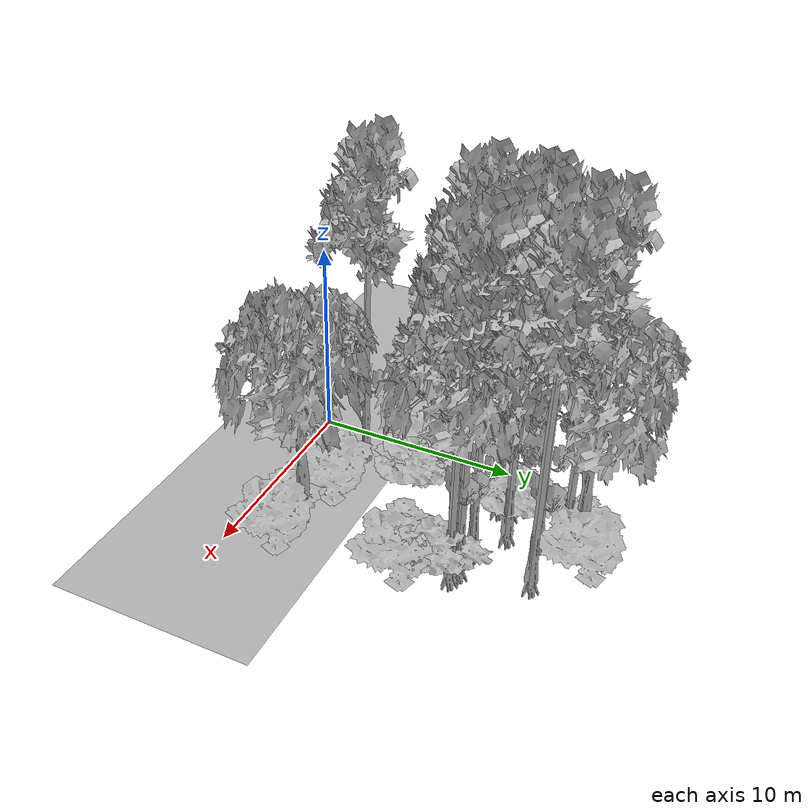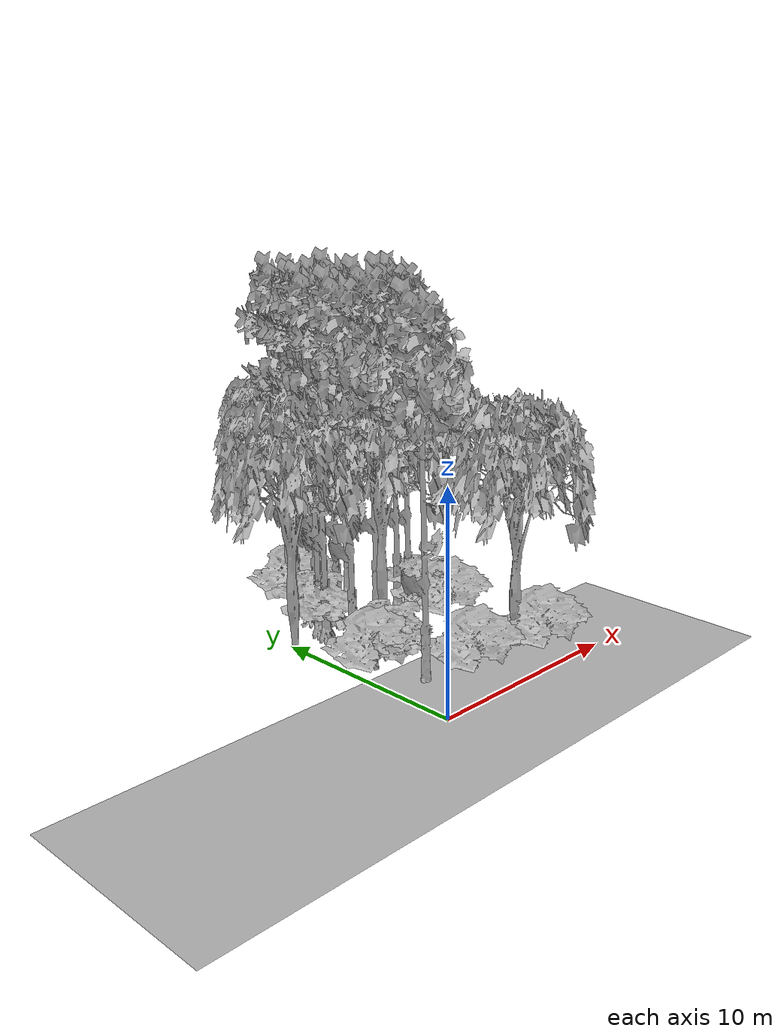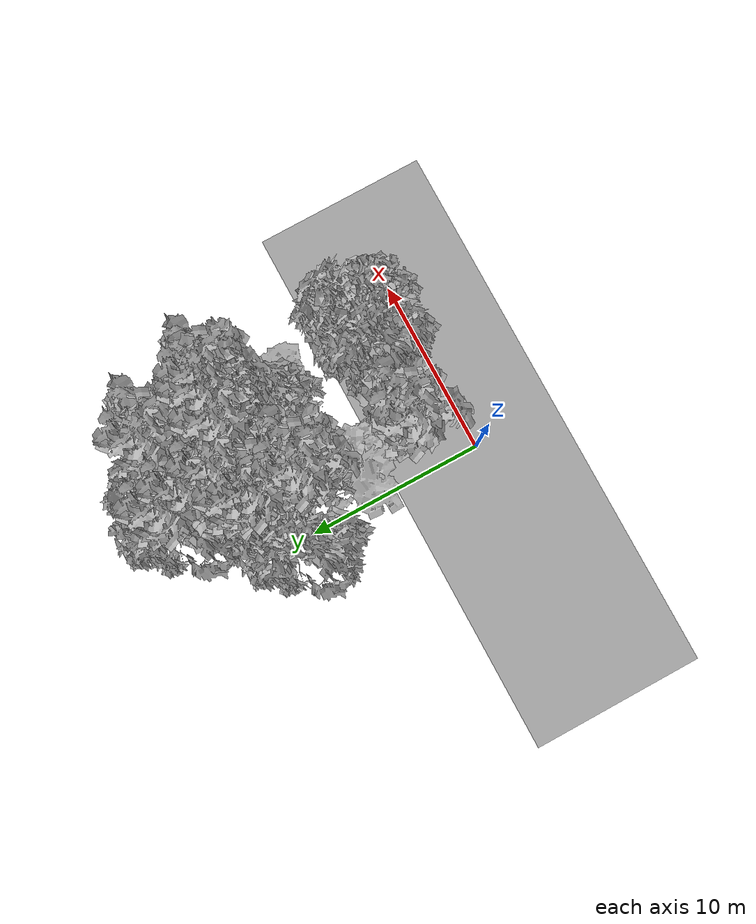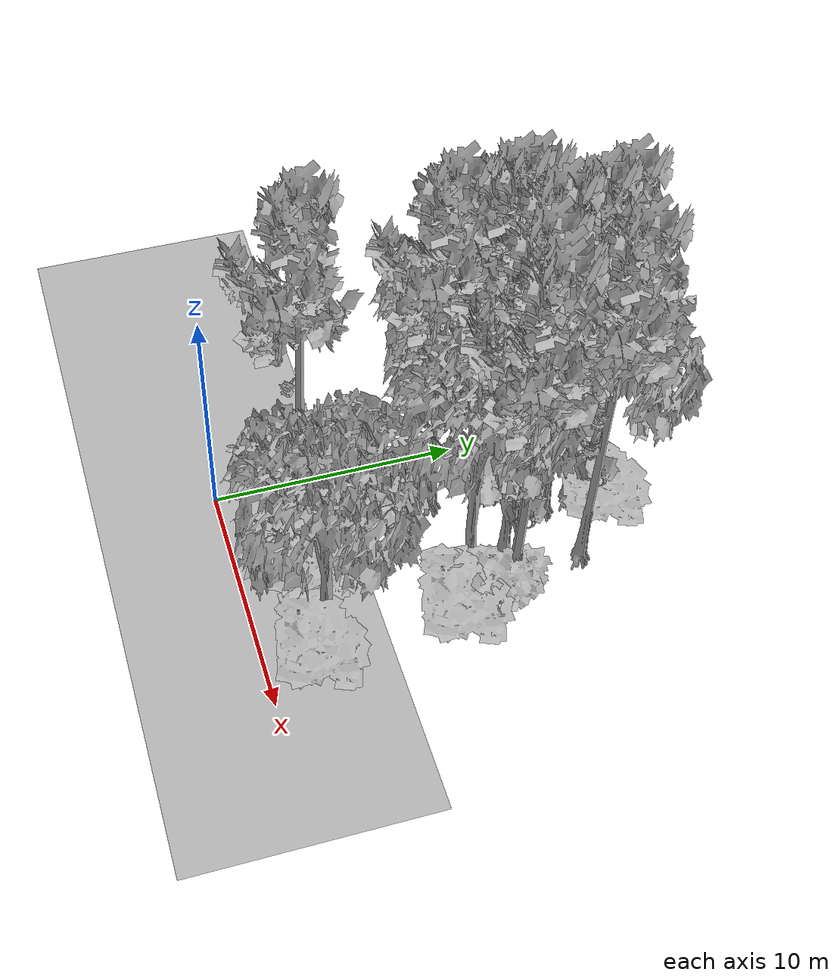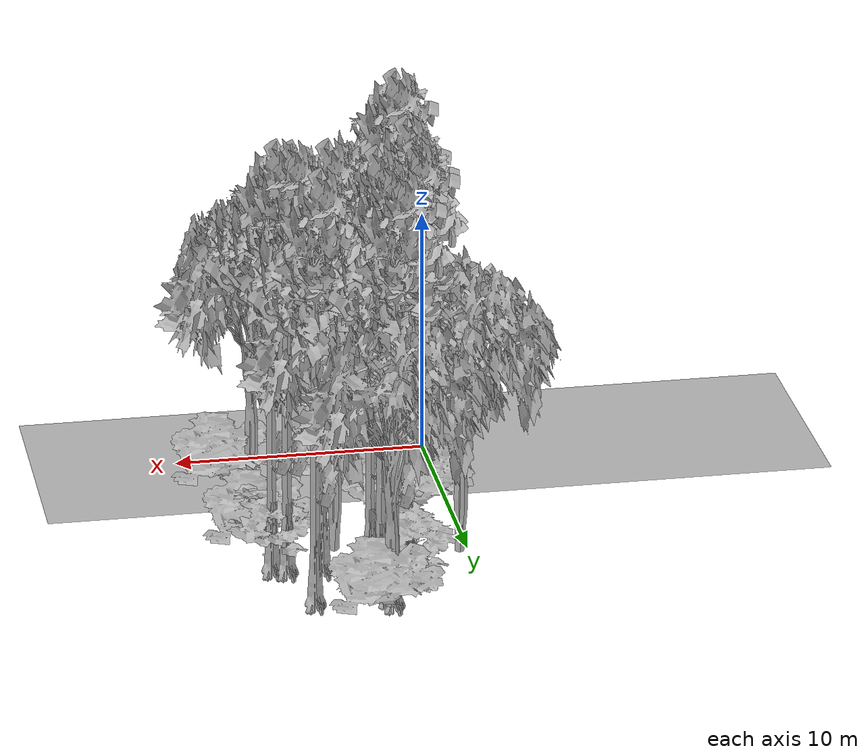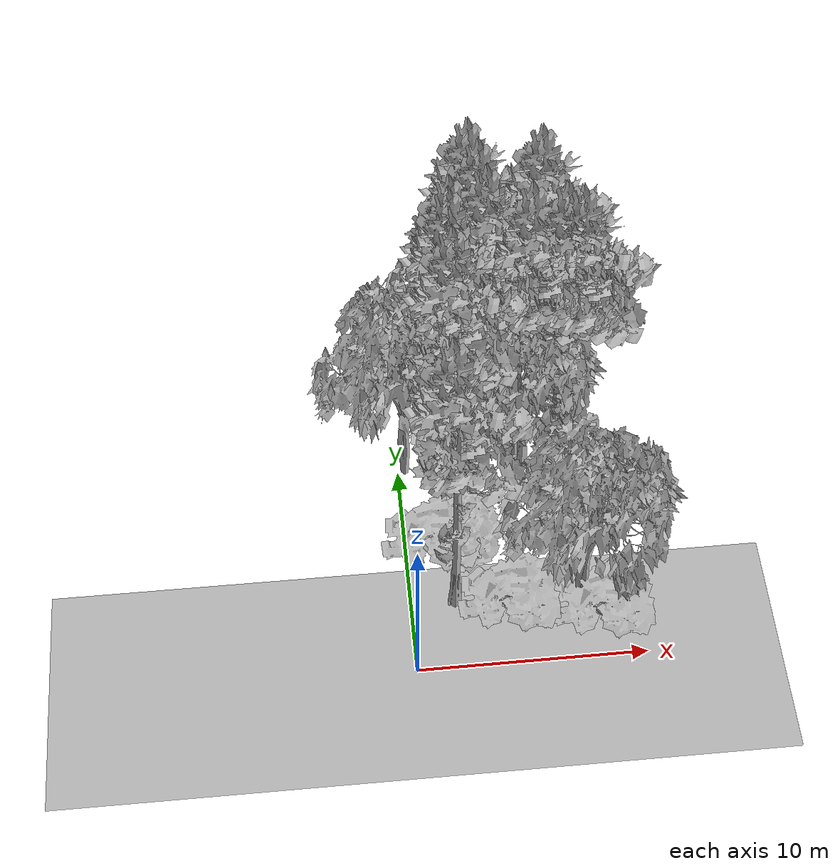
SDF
<sdf version="1.7">
 <world name="default">
  <model name="ground_plane">
   <static>1</static>
   <link name="link">
    <collision name="collision">
     <pose>-50 0 0 0 -0 0</pose>
     <geometry><plane><normal>0 0 1</normal><size>100 100</size></plane></geometry>
     <surface><contact><ode><min_depth>0.01</min_depth><max_vel>0</max_vel></ode></contact></surface>
    </collision>
    <visual name="grass">
     <cast_shadows>0</cast_shadows>
     <geometry>
      <mesh>
       <scale>0.5814285714285714 0.18142857142857144 0.1</scale>
       <uri>file://grass_plane/meshes/grass_plane.dae</uri>
      </mesh>
     </geometry>
    </visual>
   </link>
  </model>
  <model name="Tree 1">
   <static>1</static>
   <pose>6.492176944869151 13.321462057910974 0 1.57079 -0 0</pose>
   <link name="link">
    <collision name="collision">
     <geometry><mesh><scale>3.5 5 3.5</scale><uri>model://tree_9/meshes/tree_9.obj</uri></mesh></geometry>
    </collision>
    <visual name="visual">
     <geometry><mesh><scale>3.5 5 3.5</scale><uri>model://tree_9/meshes/tree_9.obj</uri></mesh></geometry>
    </visual>
   </link>
  </model>
  <model name="Tree 22">
   <static>1</static>
   <pose>5.731041198923485 10.343546982625135 0 1.57079 -0 0</pose>
   <link name="link">
    <collision name="collision">
     <geometry><mesh><scale>3.5 5 3.5</scale><uri>model://tree_9/meshes/tree_9.obj</uri></mesh></geometry>
    </collision>
    <visual name="visual">
     <geometry><mesh><scale>3.5 5 3.5</scale><uri>model://tree_9/meshes/tree_9.obj</uri></mesh></geometry>
    </visual>
   </link>
  </model>
  <model name="Tree 29">
   <static>1</static>
   <pose>1.9231340335664484 3.1677759109837744 0 1.57079 -0 0</pose>
   <link name="link">
    <collision name="collision">
     <geometry><mesh><scale>3.5 5 3.5</scale><uri>model://tree_9/meshes/tree_9.obj</uri></mesh></geometry>
    </collision>
    <visual name="visual">
     <geometry><mesh><scale>3.5 5 3.5</scale><uri>model://tree_9/meshes/tree_9.obj</uri></mesh></geometry>
    </visual>
   </link>
  </model>
  <model name="Tree 49">
   <static>1</static>
   <pose>3.8723183222564757 12.762590587330315 0 1.57079 -0 0</pose>
   <link name="link">
    <collision name="collision">
     <geometry><mesh><scale>3.5 5 3.5</scale><uri>model://tree_9/meshes/tree_9.obj</uri></mesh></geometry>
    </collision>
    <visual name="visual">
     <geometry><mesh><scale>3.5 5 3.5</scale><uri>model://tree_9/meshes/tree_9.obj</uri></mesh></geometry>
    </visual>
   </link>
  </model>
  <model name="Tree 51">
   <static>1</static>
   <pose>5.000393196169945 9.198210089421497 0 1.57079 -0 0</pose>
   <link name="link">
    <collision name="collision">
     <geometry><mesh><scale>3.5 5 3.5</scale><uri>model://tree_2/meshes/tree_2.obj</uri></mesh></geometry>
    </collision>
    <visual name="visual">
     <geometry><mesh><scale>3.5 5 3.5</scale><uri>model://tree_2/meshes/tree_2.obj</uri></mesh></geometry>
    </visual>
   </link>
  </model>
  <model name="Tree 62">
   <static>1</static>
   <pose>2.3613903461734793 6.253862053058217 0 1.57079 -0 0</pose>
   <link name="link">
    <collision name="collision">
     <geometry><mesh><scale>4 2.5 4</scale><uri>model://tree_1/meshes/tree_1.obj</uri></mesh></geometry>
    </collision>
    <visual name="visual">
     <geometry><mesh><scale>4 2.5 4</scale><uri>model://tree_1/meshes/tree_1.obj</uri></mesh></geometry>
    </visual>
   </link>
  </model>
  <model name="Tree 65">
   <static>1</static>
   <pose>4.046055688186932 11.36331482250521 0 1.57079 -0 0</pose>
   <link name="link">
    <collision name="collision">
     <geometry><mesh><scale>3.5 5 3.5</scale><uri>model://tree_9/meshes/tree_9.obj</uri></mesh></geometry>
    </collision>
    <visual name="visual">
     <geometry><mesh><scale>3.5 5 3.5</scale><uri>model://tree_9/meshes/tree_9.obj</uri></mesh></geometry>
    </visual>
   </link>
  </model>
  <model name="Tree 84">
   <static>1</static>
   <pose>2.425638363542859 10.34810752635087 0 1.57079 -0 0</pose>
   <link name="link">
    <collision name="collision">
     <geometry><mesh><scale>3.5 5 3.5</scale><uri>model://tree_9/meshes/tree_9.obj</uri></mesh></geometry>
    </collision>
    <visual name="visual">
     <geometry><mesh><scale>3.5 5 3.5</scale><uri>model://tree_9/meshes/tree_9.obj</uri></mesh></geometry>
    </visual>
   </link>
  </model>
  <model name="Tree 133">
   <static>1</static>
   <pose>8.332003364217734 1.755843126849932 0 1.57079 -0 0</pose>
   <link name="link">
    <collision name="collision">
     <geometry><mesh><scale>3 2 3</scale><uri>model://tree_3/meshes/tree_3.obj</uri></mesh></geometry>
    </collision>
    <visual name="visual">
     <geometry><mesh><scale>3 2 3</scale><uri>model://tree_3/meshes/tree_3.obj</uri></mesh></geometry>
    </visual>
   </link>
  </model>
  <model name="Tree 221">
   <static>1</static>
   <pose>2.3959029115222634 8.400877014030772 0 1.57079 -0 0</pose>
   <link name="link">
    <collision name="collision">
     <geometry><mesh><scale>3.5 5 3.5</scale><uri>model://tree_9/meshes/tree_9.obj</uri></mesh></geometry>
    </collision>
    <visual name="visual">
     <geometry><mesh><scale>3.5 5 3.5</scale><uri>model://tree_9/meshes/tree_9.obj</uri></mesh></geometry>
    </visual>
   </link>
  </model>
  <model name="Tree 240">
   <static>1</static>
   <pose>7.410483631202688 9.195646265120637 0 1.57079 -0 0</pose>
   <link name="link">
    <collision name="collision">
     <geometry><mesh><scale>4 2.5 4</scale><uri>model://tree_1/meshes/tree_1.obj</uri></mesh></geometry>
    </collision>
    <visual name="visual">
     <geometry><mesh><scale>4 2.5 4</scale><uri>model://tree_1/meshes/tree_1.obj</uri></mesh></geometry>
    </visual>
   </link>
  </model>
  <model name="Tree 248">
   <static>1</static>
   <pose>4.126090558440033 14.63759907922563 0 1.57079 -0 0</pose>
   <link name="link">
    <collision name="collision">
     <geometry><mesh><scale>3 2 3</scale><uri>model://tree_3/meshes/tree_3.obj</uri></mesh></geometry>
    </collision>
    <visual name="visual">
     <geometry><mesh><scale>3 2 3</scale><uri>model://tree_3/meshes/tree_3.obj</uri></mesh></geometry>
    </visual>
   </link>
  </model>
  <model name="Tree 252">
   <static>1</static>
   <pose>0.2403705006810597 10.130500186767115 0 1.57079 -0 0</pose>
   <link name="link">
    <collision name="collision">
     <geometry><mesh><scale>3.5 5 3.5</scale><uri>model://tree_2/meshes/tree_2.obj</uri></mesh></geometry>
    </collision>
    <visual name="visual">
     <geometry><mesh><scale>3.5 5 3.5</scale><uri>model://tree_2/meshes/tree_2.obj</uri></mesh></geometry>
    </visual>
   </link>
  </model>
  <model name="Tree 308">
   <static>1</static>
   <pose>1.2982799389609028 5.668919881924772 0 1.57079 -0 0</pose>
   <link name="link">
    <collision name="collision">
     <geometry><mesh><scale>3 2 3</scale><uri>model://tree_3/meshes/tree_3.obj</uri></mesh></geometry>
    </collision>
    <visual name="visual">
     <geometry><mesh><scale>3 2 3</scale><uri>model://tree_3/meshes/tree_3.obj</uri></mesh></geometry>
    </visual>
   </link>
  </model>
  <model name="Tree 320">
   <static>1</static>
   <pose>3.5623806641735456 13.920209401244026 0 1.57079 -0 0</pose>
   <link name="link">
    <collision name="collision">
     <geometry><mesh><scale>3.5 5 3.5</scale><uri>model://tree_9/meshes/tree_9.obj</uri></mesh></geometry>
    </collision>
    <visual name="visual">
     <geometry><mesh><scale>3.5 5 3.5</scale><uri>model://tree_9/meshes/tree_9.obj</uri></mesh></geometry>
    </visual>
   </link>
  </model>
  <model name="Tree 358">
   <static>1</static>
   <pose>2.3374898997736437 11.460236569620065 0 1.57079 -0 0</pose>
   <link name="link">
    <collision name="collision">
     <geometry><mesh><scale>4 2.5 4</scale><uri>model://tree_1/meshes/tree_1.obj</uri></mesh></geometry>
    </collision>
    <visual name="visual">
     <geometry><mesh><scale>4 2.5 4</scale><uri>model://tree_1/meshes/tree_1.obj</uri></mesh></geometry>
    </visual>
   </link>
  </model>
  <model name="Tree 370">
   <static>1</static>
   <pose>7.646111682657207 10.040552604504601 0 1.57079 -0 0</pose>
   <link name="link">
    <collision name="collision">
     <geometry><mesh><scale>3.5 5 3.5</scale><uri>model://tree_9/meshes/tree_9.obj</uri></mesh></geometry>
    </collision>
    <visual name="visual">
     <geometry><mesh><scale>3.5 5 3.5</scale><uri>model://tree_9/meshes/tree_9.obj</uri></mesh></geometry>
    </visual>
   </link>
  </model>
  <model name="Tree 374">
   <static>1</static>
   <pose>4.354536782585399 2.433063805002096 0 1.57079 -0 0</pose>
   <link name="link">
    <collision name="collision">
     <geometry><mesh><scale>3 2 3</scale><uri>model://tree_3/meshes/tree_3.obj</uri></mesh></geometry>
    </collision>
    <visual name="visual">
     <geometry><mesh><scale>3 2 3</scale><uri>model://tree_3/meshes/tree_3.obj</uri></mesh></geometry>
    </visual>
   </link>
  </model>
  <model name="Tree 418">
   <static>1</static>
   <pose>7.083139550834247 10.256389658411507 0 1.57079 -0 0</pose>
   <link name="link">
    <collision name="collision">
     <geometry><mesh><scale>3.5 5 3.5</scale><uri>model://tree_9/meshes/tree_9.obj</uri></mesh></geometry>
    </collision>
    <visual name="visual">
     <geometry><mesh><scale>3.5 5 3.5</scale><uri>model://tree_9/meshes/tree_9.obj</uri></mesh></geometry>
    </visual>
   </link>
  </model>
  <model name="Tree 501">
   <static>1</static>
   <pose>7.263554435608079 2.6949516559690245 0 1.57079 -0 0</pose>
   <link name="link">
    <collision name="collision">
     <geometry><mesh><scale>3.5 5 3.5</scale><uri>model://tree_2/meshes/tree_2.obj</uri></mesh></geometry>
    </collision>
    <visual name="visual">
     <geometry><mesh><scale>3.5 5 3.5</scale><uri>model://tree_2/meshes/tree_2.obj</uri></mesh></geometry>
    </visual>
   </link>
  </model>
  <model name="Tree 512">
   <static>1</static>
   <pose>7.892134565285808 7.515956889913163 0 1.57079 -0 0</pose>
   <link name="link">
    <collision name="collision">
     <geometry><mesh><scale>3 2 3</scale><uri>model://tree_3/meshes/tree_3.obj</uri></mesh></geometry>
    </collision>
    <visual name="visual">
     <geometry><mesh><scale>3 2 3</scale><uri>model://tree_3/meshes/tree_3.obj</uri></mesh></geometry>
    </visual>
   </link>
  </model>
  <model name="Tree 528">
   <static>1</static>
   <pose>3.713293245187664 14.596925396988997 0 1.57079 -0 0</pose>
   <link name="link">
    <collision name="collision">
     <geometry><mesh><scale>3.5 5 3.5</scale><uri>model://tree_2/meshes/tree_2.obj</uri></mesh></geometry>
    </collision>
    <visual name="visual">
     <geometry><mesh><scale>3.5 5 3.5</scale><uri>model://tree_2/meshes/tree_2.obj</uri></mesh></geometry>
    </visual>
   </link>
  </model>
  <model name="Tree 537">
   <static>1</static>
   <pose>2.531592384419895 10.975948234069332 0 1.57079 -0 0</pose>
   <link name="link">
    <collision name="collision">
     <geometry><mesh><scale>3.5 5 3.5</scale><uri>model://tree_9/meshes/tree_9.obj</uri></mesh></geometry>
    </collision>
    <visual name="visual">
     <geometry><mesh><scale>3.5 5 3.5</scale><uri>model://tree_9/meshes/tree_9.obj</uri></mesh></geometry>
    </visual>
   </link>
  </model>
 </world>
</sdf>
